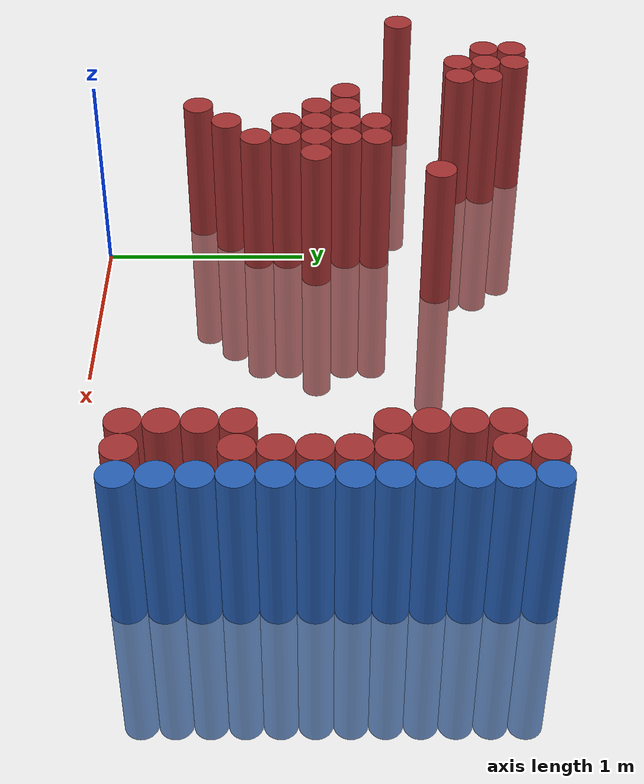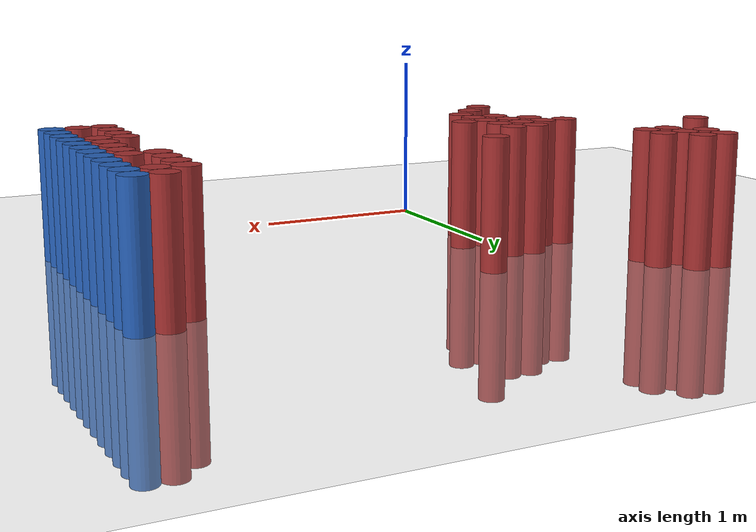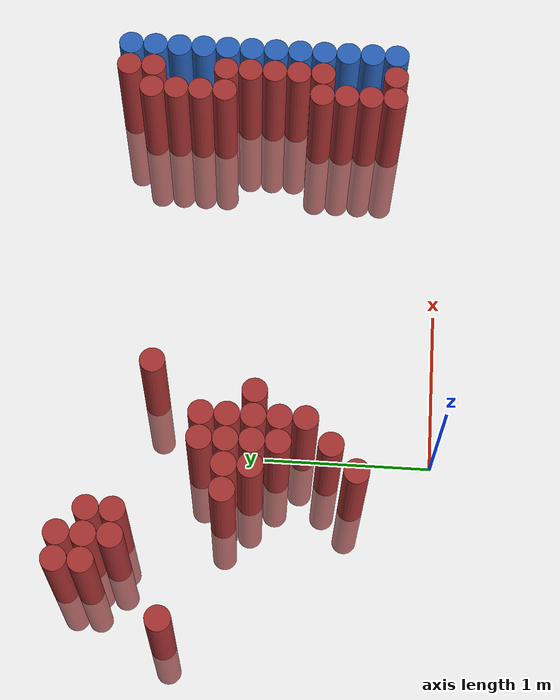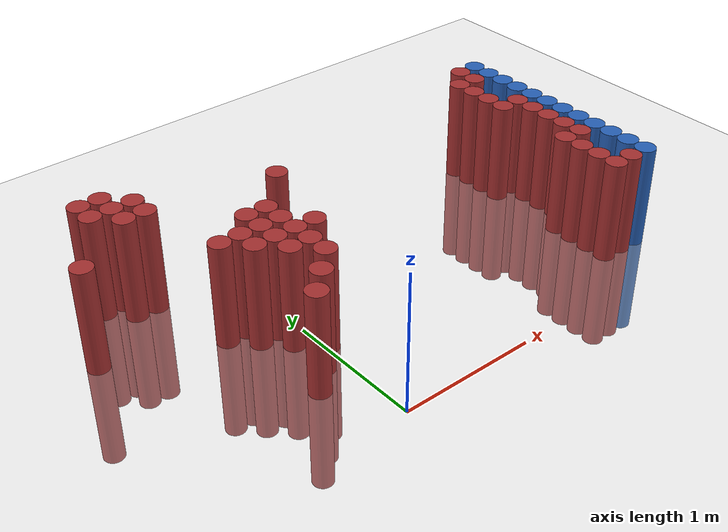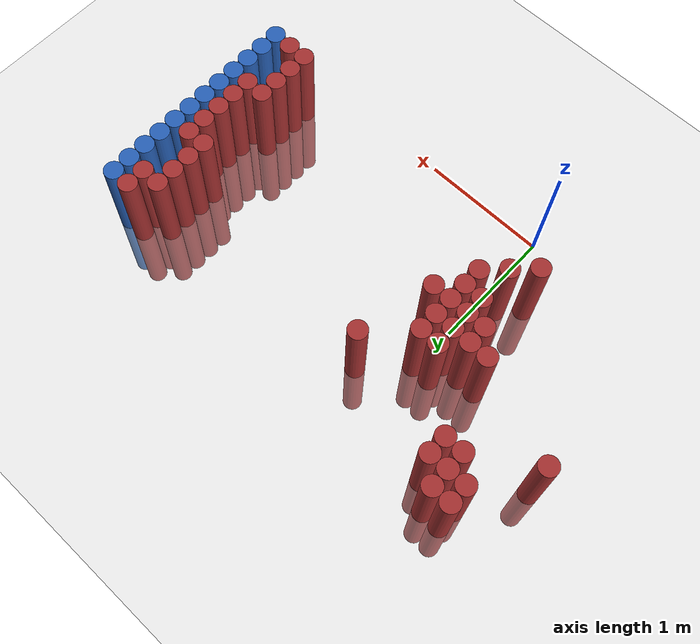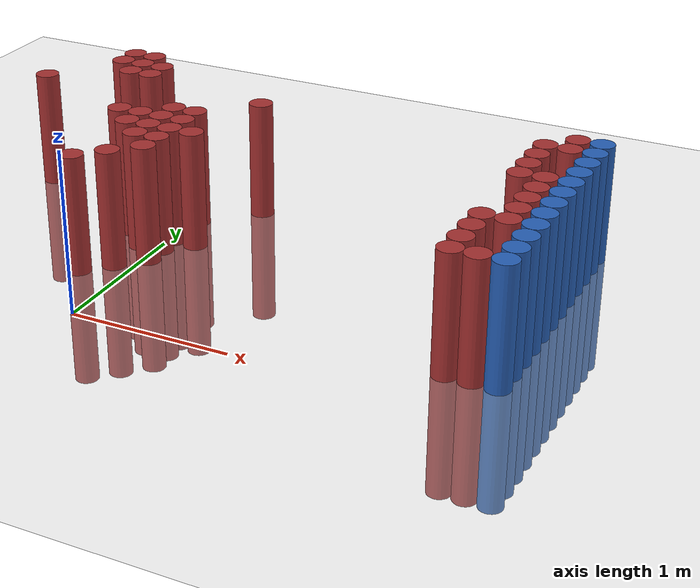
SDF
<sdf version="1.6">
 <world name="default">
  <model name="ground_plane">
   <static>1</static>
   <link name="link">
    <collision name="collision">
     <geometry><plane><normal>0 0 1</normal><size>100 100</size></plane></geometry>
     <surface><friction><ode><mu>100</mu><mu2>50</mu2></ode></friction></surface>
    </collision>
    <visual name="visual">
     <cast_shadows>0</cast_shadows>
     <geometry><plane><normal>0 0 1</normal><size>100 100</size></plane></geometry>
     <material>
      <script><uri>file://media/materials/scripts/gazebo.material</uri><name>Gazebo/Grey</name></script>
     </material>
    </visual>
   </link>
  </model>
  <model name="unit_cylinder_154">
   <static>1</static>
   <pose>-1.175000 1.525000 0.000000 0.000000 0.000000 0.000000</pose>
   <link name="link">
    <inertial>
     <mass>1</mass>
     <inertia><ixx>0.145833</ixx><ixy>0</ixy><ixz>0</ixz><iyy>0.145833</iyy><iyz>0</iyz><izz>0.125</izz></inertia>
    </inertial>
    <collision name="collision">
     <geometry><cylinder><radius>0.075000</radius><length>1.5</length></cylinder></geometry>
    </collision>
    <visual name="visual">
     <geometry><cylinder><radius>0.075000</radius><length>1.5</length></cylinder></geometry>
     <material>
      <ambient>0.648000 0.192000 0.192000 1</ambient>
      <diffuse>0.648000 0.192000 0.192000 1</diffuse>
     </material>
     <material>
      <script><name>Gazebo/Grey</name><uri>file://media/materials/scripts/gazebo.material</uri></script>
     </material>
    </visual>
   </link>
  </model>
  <model name="unit_cylinder_158">
   <static>1</static>
   <pose>-0.875000 1.975000 0.000000 0.000000 0.000000 0.000000</pose>
   <link name="link">
    <inertial>
     <mass>1</mass>
     <inertia><ixx>0.145833</ixx><ixy>0</ixy><ixz>0</ixz><iyy>0.145833</iyy><iyz>0</iyz><izz>0.125</izz></inertia>
    </inertial>
    <collision name="collision">
     <geometry><cylinder><radius>0.075000</radius><length>1.5</length></cylinder></geometry>
    </collision>
    <visual name="visual">
     <geometry><cylinder><radius>0.075000</radius><length>1.5</length></cylinder></geometry>
     <material>
      <ambient>0.648000 0.192000 0.192000 1</ambient>
      <diffuse>0.648000 0.192000 0.192000 1</diffuse>
     </material>
     <material>
      <script><name>Gazebo/Grey</name><uri>file://media/materials/scripts/gazebo.material</uri></script>
     </material>
    </visual>
   </link>
  </model>
  <model name="unit_cylinder_159">
   <static>1</static>
   <pose>-0.875000 2.125000 0.000000 0.000000 0.000000 0.000000</pose>
   <link name="link">
    <inertial>
     <mass>1</mass>
     <inertia><ixx>0.145833</ixx><ixy>0</ixy><ixz>0</ixz><iyy>0.145833</iyy><iyz>0</iyz><izz>0.125</izz></inertia>
    </inertial>
    <collision name="collision">
     <geometry><cylinder><radius>0.075000</radius><length>1.5</length></cylinder></geometry>
    </collision>
    <visual name="visual">
     <geometry><cylinder><radius>0.075000</radius><length>1.5</length></cylinder></geometry>
     <material>
      <ambient>0.648000 0.192000 0.192000 1</ambient>
      <diffuse>0.648000 0.192000 0.192000 1</diffuse>
     </material>
     <material>
      <script><name>Gazebo/Grey</name><uri>file://media/materials/scripts/gazebo.material</uri></script>
     </material>
    </visual>
   </link>
  </model>
  <model name="unit_cylinder_161">
   <static>1</static>
   <pose>-0.725000 1.825000 0.000000 0.000000 0.000000 0.000000</pose>
   <link name="link">
    <inertial>
     <mass>1</mass>
     <inertia><ixx>0.145833</ixx><ixy>0</ixy><ixz>0</ixz><iyy>0.145833</iyy><iyz>0</iyz><izz>0.125</izz></inertia>
    </inertial>
    <collision name="collision">
     <geometry><cylinder><radius>0.075000</radius><length>1.5</length></cylinder></geometry>
    </collision>
    <visual name="visual">
     <geometry><cylinder><radius>0.075000</radius><length>1.5</length></cylinder></geometry>
     <material>
      <ambient>0.648000 0.192000 0.192000 1</ambient>
      <diffuse>0.648000 0.192000 0.192000 1</diffuse>
     </material>
     <material>
      <script><name>Gazebo/Grey</name><uri>file://media/materials/scripts/gazebo.material</uri></script>
     </material>
    </visual>
   </link>
  </model>
  <model name="unit_cylinder_162">
   <static>1</static>
   <pose>-0.725000 1.975000 0.000000 0.000000 0.000000 0.000000</pose>
   <link name="link">
    <inertial>
     <mass>1</mass>
     <inertia><ixx>0.145833</ixx><ixy>0</ixy><ixz>0</ixz><iyy>0.145833</iyy><iyz>0</iyz><izz>0.125</izz></inertia>
    </inertial>
    <collision name="collision">
     <geometry><cylinder><radius>0.075000</radius><length>1.5</length></cylinder></geometry>
    </collision>
    <visual name="visual">
     <geometry><cylinder><radius>0.075000</radius><length>1.5</length></cylinder></geometry>
     <material>
      <ambient>0.648000 0.192000 0.192000 1</ambient>
      <diffuse>0.648000 0.192000 0.192000 1</diffuse>
     </material>
     <material>
      <script><name>Gazebo/Grey</name><uri>file://media/materials/scripts/gazebo.material</uri></script>
     </material>
    </visual>
   </link>
  </model>
  <model name="unit_cylinder_163">
   <static>1</static>
   <pose>-0.725000 2.125000 0.000000 0.000000 0.000000 0.000000</pose>
   <link name="link">
    <inertial>
     <mass>1</mass>
     <inertia><ixx>0.145833</ixx><ixy>0</ixy><ixz>0</ixz><iyy>0.145833</iyy><iyz>0</iyz><izz>0.125</izz></inertia>
    </inertial>
    <collision name="collision">
     <geometry><cylinder><radius>0.075000</radius><length>1.5</length></cylinder></geometry>
    </collision>
    <visual name="visual">
     <geometry><cylinder><radius>0.075000</radius><length>1.5</length></cylinder></geometry>
     <material>
      <ambient>0.648000 0.192000 0.192000 1</ambient>
      <diffuse>0.648000 0.192000 0.192000 1</diffuse>
     </material>
     <material>
      <script><name>Gazebo/Grey</name><uri>file://media/materials/scripts/gazebo.material</uri></script>
     </material>
    </visual>
   </link>
  </model>
  <model name="unit_cylinder_166">
   <static>1</static>
   <pose>-0.575000 1.825000 0.000000 0.000000 0.000000 0.000000</pose>
   <link name="link">
    <inertial>
     <mass>1</mass>
     <inertia><ixx>0.145833</ixx><ixy>0</ixy><ixz>0</ixz><iyy>0.145833</iyy><iyz>0</iyz><izz>0.125</izz></inertia>
    </inertial>
    <collision name="collision">
     <geometry><cylinder><radius>0.075000</radius><length>1.5</length></cylinder></geometry>
    </collision>
    <visual name="visual">
     <geometry><cylinder><radius>0.075000</radius><length>1.5</length></cylinder></geometry>
     <material>
      <ambient>0.648000 0.192000 0.192000 1</ambient>
      <diffuse>0.648000 0.192000 0.192000 1</diffuse>
     </material>
     <material>
      <script><name>Gazebo/Grey</name><uri>file://media/materials/scripts/gazebo.material</uri></script>
     </material>
    </visual>
   </link>
  </model>
  <model name="unit_cylinder_167">
   <static>1</static>
   <pose>-0.575000 1.975000 0.000000 0.000000 0.000000 0.000000</pose>
   <link name="link">
    <inertial>
     <mass>1</mass>
     <inertia><ixx>0.145833</ixx><ixy>0</ixy><ixz>0</ixz><iyy>0.145833</iyy><iyz>0</iyz><izz>0.125</izz></inertia>
    </inertial>
    <collision name="collision">
     <geometry><cylinder><radius>0.075000</radius><length>1.5</length></cylinder></geometry>
    </collision>
    <visual name="visual">
     <geometry><cylinder><radius>0.075000</radius><length>1.5</length></cylinder></geometry>
     <material>
      <ambient>0.648000 0.192000 0.192000 1</ambient>
      <diffuse>0.648000 0.192000 0.192000 1</diffuse>
     </material>
     <material>
      <script><name>Gazebo/Grey</name><uri>file://media/materials/scripts/gazebo.material</uri></script>
     </material>
    </visual>
   </link>
  </model>
  <model name="unit_cylinder_169">
   <static>1</static>
   <pose>-0.425000 1.225000 0.000000 0.000000 0.000000 0.000000</pose>
   <link name="link">
    <inertial>
     <mass>1</mass>
     <inertia><ixx>0.145833</ixx><ixy>0</ixy><ixz>0</ixz><iyy>0.145833</iyy><iyz>0</iyz><izz>0.125</izz></inertia>
    </inertial>
    <collision name="collision">
     <geometry><cylinder><radius>0.075000</radius><length>1.5</length></cylinder></geometry>
    </collision>
    <visual name="visual">
     <geometry><cylinder><radius>0.075000</radius><length>1.5</length></cylinder></geometry>
     <material>
      <ambient>0.648000 0.192000 0.192000 1</ambient>
      <diffuse>0.648000 0.192000 0.192000 1</diffuse>
     </material>
     <material>
      <script><name>Gazebo/Grey</name><uri>file://media/materials/scripts/gazebo.material</uri></script>
     </material>
    </visual>
   </link>
  </model>
  <model name="unit_cylinder_170">
   <static>1</static>
   <pose>-0.275000 0.475000 0.000000 0.000000 0.000000 0.000000</pose>
   <link name="link">
    <inertial>
     <mass>1</mass>
     <inertia><ixx>0.145833</ixx><ixy>0</ixy><ixz>0</ixz><iyy>0.145833</iyy><iyz>0</iyz><izz>0.125</izz></inertia>
    </inertial>
    <collision name="collision">
     <geometry><cylinder><radius>0.075000</radius><length>1.5</length></cylinder></geometry>
    </collision>
    <visual name="visual">
     <geometry><cylinder><radius>0.075000</radius><length>1.5</length></cylinder></geometry>
     <material>
      <ambient>0.648000 0.192000 0.192000 1</ambient>
      <diffuse>0.648000 0.192000 0.192000 1</diffuse>
     </material>
     <material>
      <script><name>Gazebo/Grey</name><uri>file://media/materials/scripts/gazebo.material</uri></script>
     </material>
    </visual>
   </link>
  </model>
  <model name="unit_cylinder_171">
   <static>1</static>
   <pose>-0.275000 1.075000 0.000000 0.000000 0.000000 0.000000</pose>
   <link name="link">
    <inertial>
     <mass>1</mass>
     <inertia><ixx>0.145833</ixx><ixy>0</ixy><ixz>0</ixz><iyy>0.145833</iyy><iyz>0</iyz><izz>0.125</izz></inertia>
    </inertial>
    <collision name="collision">
     <geometry><cylinder><radius>0.075000</radius><length>1.5</length></cylinder></geometry>
    </collision>
    <visual name="visual">
     <geometry><cylinder><radius>0.075000</radius><length>1.5</length></cylinder></geometry>
     <material>
      <ambient>0.648000 0.192000 0.192000 1</ambient>
      <diffuse>0.648000 0.192000 0.192000 1</diffuse>
     </material>
     <material>
      <script><name>Gazebo/Grey</name><uri>file://media/materials/scripts/gazebo.material</uri></script>
     </material>
    </visual>
   </link>
  </model>
  <model name="unit_cylinder_172">
   <static>1</static>
   <pose>-0.275000 1.225000 0.000000 0.000000 0.000000 0.000000</pose>
   <link name="link">
    <inertial>
     <mass>1</mass>
     <inertia><ixx>0.145833</ixx><ixy>0</ixy><ixz>0</ixz><iyy>0.145833</iyy><iyz>0</iyz><izz>0.125</izz></inertia>
    </inertial>
    <collision name="collision">
     <geometry><cylinder><radius>0.075000</radius><length>1.5</length></cylinder></geometry>
    </collision>
    <visual name="visual">
     <geometry><cylinder><radius>0.075000</radius><length>1.5</length></cylinder></geometry>
     <material>
      <ambient>0.648000 0.192000 0.192000 1</ambient>
      <diffuse>0.648000 0.192000 0.192000 1</diffuse>
     </material>
     <material>
      <script><name>Gazebo/Grey</name><uri>file://media/materials/scripts/gazebo.material</uri></script>
     </material>
    </visual>
   </link>
  </model>
  <model name="unit_cylinder_174">
   <static>1</static>
   <pose>-0.125000 0.625000 0.000000 0.000000 0.000000 0.000000</pose>
   <link name="link">
    <inertial>
     <mass>1</mass>
     <inertia><ixx>0.145833</ixx><ixy>0</ixy><ixz>0</ixz><iyy>0.145833</iyy><iyz>0</iyz><izz>0.125</izz></inertia>
    </inertial>
    <collision name="collision">
     <geometry><cylinder><radius>0.075000</radius><length>1.5</length></cylinder></geometry>
    </collision>
    <visual name="visual">
     <geometry><cylinder><radius>0.075000</radius><length>1.5</length></cylinder></geometry>
     <material>
      <ambient>0.648000 0.192000 0.192000 1</ambient>
      <diffuse>0.648000 0.192000 0.192000 1</diffuse>
     </material>
     <material>
      <script><name>Gazebo/Grey</name><uri>file://media/materials/scripts/gazebo.material</uri></script>
     </material>
    </visual>
   </link>
  </model>
  <model name="unit_cylinder_175">
   <static>1</static>
   <pose>-0.125000 0.925000 0.000000 0.000000 0.000000 0.000000</pose>
   <link name="link">
    <inertial>
     <mass>1</mass>
     <inertia><ixx>0.145833</ixx><ixy>0</ixy><ixz>0</ixz><iyy>0.145833</iyy><iyz>0</iyz><izz>0.125</izz></inertia>
    </inertial>
    <collision name="collision">
     <geometry><cylinder><radius>0.075000</radius><length>1.5</length></cylinder></geometry>
    </collision>
    <visual name="visual">
     <geometry><cylinder><radius>0.075000</radius><length>1.5</length></cylinder></geometry>
     <material>
      <ambient>0.648000 0.192000 0.192000 1</ambient>
      <diffuse>0.648000 0.192000 0.192000 1</diffuse>
     </material>
     <material>
      <script><name>Gazebo/Grey</name><uri>file://media/materials/scripts/gazebo.material</uri></script>
     </material>
    </visual>
   </link>
  </model>
  <model name="unit_cylinder_176">
   <static>1</static>
   <pose>-0.125000 1.075000 0.000000 0.000000 0.000000 0.000000</pose>
   <link name="link">
    <inertial>
     <mass>1</mass>
     <inertia><ixx>0.145833</ixx><ixy>0</ixy><ixz>0</ixz><iyy>0.145833</iyy><iyz>0</iyz><izz>0.125</izz></inertia>
    </inertial>
    <collision name="collision">
     <geometry><cylinder><radius>0.075000</radius><length>1.5</length></cylinder></geometry>
    </collision>
    <visual name="visual">
     <geometry><cylinder><radius>0.075000</radius><length>1.5</length></cylinder></geometry>
     <material>
      <ambient>0.648000 0.192000 0.192000 1</ambient>
      <diffuse>0.648000 0.192000 0.192000 1</diffuse>
     </material>
     <material>
      <script><name>Gazebo/Grey</name><uri>file://media/materials/scripts/gazebo.material</uri></script>
     </material>
    </visual>
   </link>
  </model>
  <model name="unit_cylinder_177">
   <static>1</static>
   <pose>-0.125000 1.225000 0.000000 0.000000 0.000000 0.000000</pose>
   <link name="link">
    <inertial>
     <mass>1</mass>
     <inertia><ixx>0.145833</ixx><ixy>0</ixy><ixz>0</ixz><iyy>0.145833</iyy><iyz>0</iyz><izz>0.125</izz></inertia>
    </inertial>
    <collision name="collision">
     <geometry><cylinder><radius>0.075000</radius><length>1.5</length></cylinder></geometry>
    </collision>
    <visual name="visual">
     <geometry><cylinder><radius>0.075000</radius><length>1.5</length></cylinder></geometry>
     <material>
      <ambient>0.648000 0.192000 0.192000 1</ambient>
      <diffuse>0.648000 0.192000 0.192000 1</diffuse>
     </material>
     <material>
      <script><name>Gazebo/Grey</name><uri>file://media/materials/scripts/gazebo.material</uri></script>
     </material>
    </visual>
   </link>
  </model>
  <model name="unit_cylinder_178">
   <static>1</static>
   <pose>-0.125000 1.375000 0.000000 0.000000 0.000000 0.000000</pose>
   <link name="link">
    <inertial>
     <mass>1</mass>
     <inertia><ixx>0.145833</ixx><ixy>0</ixy><ixz>0</ixz><iyy>0.145833</iyy><iyz>0</iyz><izz>0.125</izz></inertia>
    </inertial>
    <collision name="collision">
     <geometry><cylinder><radius>0.075000</radius><length>1.5</length></cylinder></geometry>
    </collision>
    <visual name="visual">
     <geometry><cylinder><radius>0.075000</radius><length>1.5</length></cylinder></geometry>
     <material>
      <ambient>0.648000 0.192000 0.192000 1</ambient>
      <diffuse>0.648000 0.192000 0.192000 1</diffuse>
     </material>
     <material>
      <script><name>Gazebo/Grey</name><uri>file://media/materials/scripts/gazebo.material</uri></script>
     </material>
    </visual>
   </link>
  </model>
  <model name="unit_cylinder_180">
   <static>1</static>
   <pose>0.025000 0.775000 0.000000 0.000000 0.000000 0.000000</pose>
   <link name="link">
    <inertial>
     <mass>1</mass>
     <inertia><ixx>0.145833</ixx><ixy>0</ixy><ixz>0</ixz><iyy>0.145833</iyy><iyz>0</iyz><izz>0.125</izz></inertia>
    </inertial>
    <collision name="collision">
     <geometry><cylinder><radius>0.075000</radius><length>1.5</length></cylinder></geometry>
    </collision>
    <visual name="visual">
     <geometry><cylinder><radius>0.075000</radius><length>1.5</length></cylinder></geometry>
     <material>
      <ambient>0.648000 0.192000 0.192000 1</ambient>
      <diffuse>0.648000 0.192000 0.192000 1</diffuse>
     </material>
     <material>
      <script><name>Gazebo/Grey</name><uri>file://media/materials/scripts/gazebo.material</uri></script>
     </material>
    </visual>
   </link>
  </model>
  <model name="unit_cylinder_181">
   <static>1</static>
   <pose>0.025000 0.925000 0.000000 0.000000 0.000000 0.000000</pose>
   <link name="link">
    <inertial>
     <mass>1</mass>
     <inertia><ixx>0.145833</ixx><ixy>0</ixy><ixz>0</ixz><iyy>0.145833</iyy><iyz>0</iyz><izz>0.125</izz></inertia>
    </inertial>
    <collision name="collision">
     <geometry><cylinder><radius>0.075000</radius><length>1.5</length></cylinder></geometry>
    </collision>
    <visual name="visual">
     <geometry><cylinder><radius>0.075000</radius><length>1.5</length></cylinder></geometry>
     <material>
      <ambient>0.648000 0.192000 0.192000 1</ambient>
      <diffuse>0.648000 0.192000 0.192000 1</diffuse>
     </material>
     <material>
      <script><name>Gazebo/Grey</name><uri>file://media/materials/scripts/gazebo.material</uri></script>
     </material>
    </visual>
   </link>
  </model>
  <model name="unit_cylinder_182">
   <static>1</static>
   <pose>0.025000 1.075000 0.000000 0.000000 0.000000 0.000000</pose>
   <link name="link">
    <inertial>
     <mass>1</mass>
     <inertia><ixx>0.145833</ixx><ixy>0</ixy><ixz>0</ixz><iyy>0.145833</iyy><iyz>0</iyz><izz>0.125</izz></inertia>
    </inertial>
    <collision name="collision">
     <geometry><cylinder><radius>0.075000</radius><length>1.5</length></cylinder></geometry>
    </collision>
    <visual name="visual">
     <geometry><cylinder><radius>0.075000</radius><length>1.5</length></cylinder></geometry>
     <material>
      <ambient>0.648000 0.192000 0.192000 1</ambient>
      <diffuse>0.648000 0.192000 0.192000 1</diffuse>
     </material>
     <material>
      <script><name>Gazebo/Grey</name><uri>file://media/materials/scripts/gazebo.material</uri></script>
     </material>
    </visual>
   </link>
  </model>
  <model name="unit_cylinder_183">
   <static>1</static>
   <pose>0.025000 1.225000 0.000000 0.000000 0.000000 0.000000</pose>
   <link name="link">
    <inertial>
     <mass>1</mass>
     <inertia><ixx>0.145833</ixx><ixy>0</ixy><ixz>0</ixz><iyy>0.145833</iyy><iyz>0</iyz><izz>0.125</izz></inertia>
    </inertial>
    <collision name="collision">
     <geometry><cylinder><radius>0.075000</radius><length>1.5</length></cylinder></geometry>
    </collision>
    <visual name="visual">
     <geometry><cylinder><radius>0.075000</radius><length>1.5</length></cylinder></geometry>
     <material>
      <ambient>0.648000 0.192000 0.192000 1</ambient>
      <diffuse>0.648000 0.192000 0.192000 1</diffuse>
     </material>
     <material>
      <script><name>Gazebo/Grey</name><uri>file://media/materials/scripts/gazebo.material</uri></script>
     </material>
    </visual>
   </link>
  </model>
  <model name="unit_cylinder_184">
   <static>1</static>
   <pose>0.025000 1.375000 0.000000 0.000000 0.000000 0.000000</pose>
   <link name="link">
    <inertial>
     <mass>1</mass>
     <inertia><ixx>0.145833</ixx><ixy>0</ixy><ixz>0</ixz><iyy>0.145833</iyy><iyz>0</iyz><izz>0.125</izz></inertia>
    </inertial>
    <collision name="collision">
     <geometry><cylinder><radius>0.075000</radius><length>1.5</length></cylinder></geometry>
    </collision>
    <visual name="visual">
     <geometry><cylinder><radius>0.075000</radius><length>1.5</length></cylinder></geometry>
     <material>
      <ambient>0.648000 0.192000 0.192000 1</ambient>
      <diffuse>0.648000 0.192000 0.192000 1</diffuse>
     </material>
     <material>
      <script><name>Gazebo/Grey</name><uri>file://media/materials/scripts/gazebo.material</uri></script>
     </material>
    </visual>
   </link>
  </model>
  <model name="unit_cylinder_187">
   <static>1</static>
   <pose>0.175000 1.075000 0.000000 0.000000 0.000000 0.000000</pose>
   <link name="link">
    <inertial>
     <mass>1</mass>
     <inertia><ixx>0.145833</ixx><ixy>0</ixy><ixz>0</ixz><iyy>0.145833</iyy><iyz>0</iyz><izz>0.125</izz></inertia>
    </inertial>
    <collision name="collision">
     <geometry><cylinder><radius>0.075000</radius><length>1.5</length></cylinder></geometry>
    </collision>
    <visual name="visual">
     <geometry><cylinder><radius>0.075000</radius><length>1.5</length></cylinder></geometry>
     <material>
      <ambient>0.648000 0.192000 0.192000 1</ambient>
      <diffuse>0.648000 0.192000 0.192000 1</diffuse>
     </material>
     <material>
      <script><name>Gazebo/Grey</name><uri>file://media/materials/scripts/gazebo.material</uri></script>
     </material>
    </visual>
   </link>
  </model>
  <model name="unit_cylinder_189">
   <static>1</static>
   <pose>0.325000 1.675000 0.000000 0.000000 0.000000 0.000000</pose>
   <link name="link">
    <inertial>
     <mass>1</mass>
     <inertia><ixx>0.145833</ixx><ixy>0</ixy><ixz>0</ixz><iyy>0.145833</iyy><iyz>0</iyz><izz>0.125</izz></inertia>
    </inertial>
    <collision name="collision">
     <geometry><cylinder><radius>0.075000</radius><length>1.5</length></cylinder></geometry>
    </collision>
    <visual name="visual">
     <geometry><cylinder><radius>0.075000</radius><length>1.5</length></cylinder></geometry>
     <material>
      <ambient>0.648000 0.192000 0.192000 1</ambient>
      <diffuse>0.648000 0.192000 0.192000 1</diffuse>
     </material>
     <material>
      <script><name>Gazebo/Grey</name><uri>file://media/materials/scripts/gazebo.material</uri></script>
     </material>
    </visual>
   </link>
  </model>
  <model name="unit_cylinder_202">
   <static>1</static>
   <pose>2.125000 0.325000 0.000000 0.000000 0.000000 0.000000</pose>
   <link name="link">
    <inertial>
     <mass>1</mass>
     <inertia><ixx>0.145833</ixx><ixy>0</ixy><ixz>0</ixz><iyy>0.145833</iyy><iyz>0</iyz><izz>0.125</izz></inertia>
    </inertial>
    <collision name="collision">
     <geometry><cylinder><radius>0.075000</radius><length>1.5</length></cylinder></geometry>
    </collision>
    <visual name="visual">
     <geometry><cylinder><radius>0.075000</radius><length>1.5</length></cylinder></geometry>
     <material>
      <ambient>0.648000 0.192000 0.192000 1</ambient>
      <diffuse>0.648000 0.192000 0.192000 1</diffuse>
     </material>
     <material>
      <script><name>Gazebo/Grey</name><uri>file://media/materials/scripts/gazebo.material</uri></script>
     </material>
    </visual>
   </link>
  </model>
  <model name="unit_cylinder_203">
   <static>1</static>
   <pose>2.125000 0.475000 0.000000 0.000000 0.000000 0.000000</pose>
   <link name="link">
    <inertial>
     <mass>1</mass>
     <inertia><ixx>0.145833</ixx><ixy>0</ixy><ixz>0</ixz><iyy>0.145833</iyy><iyz>0</iyz><izz>0.125</izz></inertia>
    </inertial>
    <collision name="collision">
     <geometry><cylinder><radius>0.075000</radius><length>1.5</length></cylinder></geometry>
    </collision>
    <visual name="visual">
     <geometry><cylinder><radius>0.075000</radius><length>1.5</length></cylinder></geometry>
     <material>
      <ambient>0.648000 0.192000 0.192000 1</ambient>
      <diffuse>0.648000 0.192000 0.192000 1</diffuse>
     </material>
     <material>
      <script><name>Gazebo/Grey</name><uri>file://media/materials/scripts/gazebo.material</uri></script>
     </material>
    </visual>
   </link>
  </model>
  <model name="unit_cylinder_204">
   <static>1</static>
   <pose>2.125000 0.625000 0.000000 0.000000 0.000000 0.000000</pose>
   <link name="link">
    <inertial>
     <mass>1</mass>
     <inertia><ixx>0.145833</ixx><ixy>0</ixy><ixz>0</ixz><iyy>0.145833</iyy><iyz>0</iyz><izz>0.125</izz></inertia>
    </inertial>
    <collision name="collision">
     <geometry><cylinder><radius>0.075000</radius><length>1.5</length></cylinder></geometry>
    </collision>
    <visual name="visual">
     <geometry><cylinder><radius>0.075000</radius><length>1.5</length></cylinder></geometry>
     <material>
      <ambient>0.648000 0.192000 0.192000 1</ambient>
      <diffuse>0.648000 0.192000 0.192000 1</diffuse>
     </material>
     <material>
      <script><name>Gazebo/Grey</name><uri>file://media/materials/scripts/gazebo.material</uri></script>
     </material>
    </visual>
   </link>
  </model>
  <model name="unit_cylinder_205">
   <static>1</static>
   <pose>2.125000 0.775000 0.000000 0.000000 0.000000 0.000000</pose>
   <link name="link">
    <inertial>
     <mass>1</mass>
     <inertia><ixx>0.145833</ixx><ixy>0</ixy><ixz>0</ixz><iyy>0.145833</iyy><iyz>0</iyz><izz>0.125</izz></inertia>
    </inertial>
    <collision name="collision">
     <geometry><cylinder><radius>0.075000</radius><length>1.5</length></cylinder></geometry>
    </collision>
    <visual name="visual">
     <geometry><cylinder><radius>0.075000</radius><length>1.5</length></cylinder></geometry>
     <material>
      <ambient>0.648000 0.192000 0.192000 1</ambient>
      <diffuse>0.648000 0.192000 0.192000 1</diffuse>
     </material>
     <material>
      <script><name>Gazebo/Grey</name><uri>file://media/materials/scripts/gazebo.material</uri></script>
     </material>
    </visual>
   </link>
  </model>
  <model name="unit_cylinder_206">
   <static>1</static>
   <pose>2.125000 1.375000 0.000000 0.000000 0.000000 0.000000</pose>
   <link name="link">
    <inertial>
     <mass>1</mass>
     <inertia><ixx>0.145833</ixx><ixy>0</ixy><ixz>0</ixz><iyy>0.145833</iyy><iyz>0</iyz><izz>0.125</izz></inertia>
    </inertial>
    <collision name="collision">
     <geometry><cylinder><radius>0.075000</radius><length>1.5</length></cylinder></geometry>
    </collision>
    <visual name="visual">
     <geometry><cylinder><radius>0.075000</radius><length>1.5</length></cylinder></geometry>
     <material>
      <ambient>0.648000 0.192000 0.192000 1</ambient>
      <diffuse>0.648000 0.192000 0.192000 1</diffuse>
     </material>
     <material>
      <script><name>Gazebo/Grey</name><uri>file://media/materials/scripts/gazebo.material</uri></script>
     </material>
    </visual>
   </link>
  </model>
  <model name="unit_cylinder_207">
   <static>1</static>
   <pose>2.125000 1.525000 0.000000 0.000000 0.000000 0.000000</pose>
   <link name="link">
    <inertial>
     <mass>1</mass>
     <inertia><ixx>0.145833</ixx><ixy>0</ixy><ixz>0</ixz><iyy>0.145833</iyy><iyz>0</iyz><izz>0.125</izz></inertia>
    </inertial>
    <collision name="collision">
     <geometry><cylinder><radius>0.075000</radius><length>1.5</length></cylinder></geometry>
    </collision>
    <visual name="visual">
     <geometry><cylinder><radius>0.075000</radius><length>1.5</length></cylinder></geometry>
     <material>
      <ambient>0.648000 0.192000 0.192000 1</ambient>
      <diffuse>0.648000 0.192000 0.192000 1</diffuse>
     </material>
     <material>
      <script><name>Gazebo/Grey</name><uri>file://media/materials/scripts/gazebo.material</uri></script>
     </material>
    </visual>
   </link>
  </model>
  <model name="unit_cylinder_208">
   <static>1</static>
   <pose>2.125000 1.675000 0.000000 0.000000 0.000000 0.000000</pose>
   <link name="link">
    <inertial>
     <mass>1</mass>
     <inertia><ixx>0.145833</ixx><ixy>0</ixy><ixz>0</ixz><iyy>0.145833</iyy><iyz>0</iyz><izz>0.125</izz></inertia>
    </inertial>
    <collision name="collision">
     <geometry><cylinder><radius>0.075000</radius><length>1.5</length></cylinder></geometry>
    </collision>
    <visual name="visual">
     <geometry><cylinder><radius>0.075000</radius><length>1.5</length></cylinder></geometry>
     <material>
      <ambient>0.648000 0.192000 0.192000 1</ambient>
      <diffuse>0.648000 0.192000 0.192000 1</diffuse>
     </material>
     <material>
      <script><name>Gazebo/Grey</name><uri>file://media/materials/scripts/gazebo.material</uri></script>
     </material>
    </visual>
   </link>
  </model>
  <model name="unit_cylinder_209">
   <static>1</static>
   <pose>2.125000 1.825000 0.000000 0.000000 0.000000 0.000000</pose>
   <link name="link">
    <inertial>
     <mass>1</mass>
     <inertia><ixx>0.145833</ixx><ixy>0</ixy><ixz>0</ixz><iyy>0.145833</iyy><iyz>0</iyz><izz>0.125</izz></inertia>
    </inertial>
    <collision name="collision">
     <geometry><cylinder><radius>0.075000</radius><length>1.5</length></cylinder></geometry>
    </collision>
    <visual name="visual">
     <geometry><cylinder><radius>0.075000</radius><length>1.5</length></cylinder></geometry>
     <material>
      <ambient>0.648000 0.192000 0.192000 1</ambient>
      <diffuse>0.648000 0.192000 0.192000 1</diffuse>
     </material>
     <material>
      <script><name>Gazebo/Grey</name><uri>file://media/materials/scripts/gazebo.material</uri></script>
     </material>
    </visual>
   </link>
  </model>
  <model name="unit_cylinder_211">
   <static>1</static>
   <pose>2.275000 0.325000 0.000000 0.000000 0.000000 0.000000</pose>
   <link name="link">
    <inertial>
     <mass>1</mass>
     <inertia><ixx>0.145833</ixx><ixy>0</ixy><ixz>0</ixz><iyy>0.145833</iyy><iyz>0</iyz><izz>0.125</izz></inertia>
    </inertial>
    <collision name="collision">
     <geometry><cylinder><radius>0.075000</radius><length>1.5</length></cylinder></geometry>
    </collision>
    <visual name="visual">
     <geometry><cylinder><radius>0.075000</radius><length>1.5</length></cylinder></geometry>
     <material>
      <ambient>0.648000 0.192000 0.192000 1</ambient>
      <diffuse>0.648000 0.192000 0.192000 1</diffuse>
     </material>
     <material>
      <script><name>Gazebo/Grey</name><uri>file://media/materials/scripts/gazebo.material</uri></script>
     </material>
    </visual>
   </link>
  </model>
  <model name="unit_cylinder_212">
   <static>1</static>
   <pose>2.275000 0.775000 0.000000 0.000000 0.000000 0.000000</pose>
   <link name="link">
    <inertial>
     <mass>1</mass>
     <inertia><ixx>0.145833</ixx><ixy>0</ixy><ixz>0</ixz><iyy>0.145833</iyy><iyz>0</iyz><izz>0.125</izz></inertia>
    </inertial>
    <collision name="collision">
     <geometry><cylinder><radius>0.075000</radius><length>1.5</length></cylinder></geometry>
    </collision>
    <visual name="visual">
     <geometry><cylinder><radius>0.075000</radius><length>1.5</length></cylinder></geometry>
     <material>
      <ambient>0.648000 0.192000 0.192000 1</ambient>
      <diffuse>0.648000 0.192000 0.192000 1</diffuse>
     </material>
     <material>
      <script><name>Gazebo/Grey</name><uri>file://media/materials/scripts/gazebo.material</uri></script>
     </material>
    </visual>
   </link>
  </model>
  <model name="unit_cylinder_213">
   <static>1</static>
   <pose>2.275000 0.925000 0.000000 0.000000 0.000000 0.000000</pose>
   <link name="link">
    <inertial>
     <mass>1</mass>
     <inertia><ixx>0.145833</ixx><ixy>0</ixy><ixz>0</ixz><iyy>0.145833</iyy><iyz>0</iyz><izz>0.125</izz></inertia>
    </inertial>
    <collision name="collision">
     <geometry><cylinder><radius>0.075000</radius><length>1.5</length></cylinder></geometry>
    </collision>
    <visual name="visual">
     <geometry><cylinder><radius>0.075000</radius><length>1.5</length></cylinder></geometry>
     <material>
      <ambient>0.648000 0.192000 0.192000 1</ambient>
      <diffuse>0.648000 0.192000 0.192000 1</diffuse>
     </material>
     <material>
      <script><name>Gazebo/Grey</name><uri>file://media/materials/scripts/gazebo.material</uri></script>
     </material>
    </visual>
   </link>
  </model>
  <model name="unit_cylinder_214">
   <static>1</static>
   <pose>2.275000 1.075000 0.000000 0.000000 0.000000 0.000000</pose>
   <link name="link">
    <inertial>
     <mass>1</mass>
     <inertia><ixx>0.145833</ixx><ixy>0</ixy><ixz>0</ixz><iyy>0.145833</iyy><iyz>0</iyz><izz>0.125</izz></inertia>
    </inertial>
    <collision name="collision">
     <geometry><cylinder><radius>0.075000</radius><length>1.5</length></cylinder></geometry>
    </collision>
    <visual name="visual">
     <geometry><cylinder><radius>0.075000</radius><length>1.5</length></cylinder></geometry>
     <material>
      <ambient>0.648000 0.192000 0.192000 1</ambient>
      <diffuse>0.648000 0.192000 0.192000 1</diffuse>
     </material>
     <material>
      <script><name>Gazebo/Grey</name><uri>file://media/materials/scripts/gazebo.material</uri></script>
     </material>
    </visual>
   </link>
  </model>
  <model name="unit_cylinder_215">
   <static>1</static>
   <pose>2.275000 1.225000 0.000000 0.000000 0.000000 0.000000</pose>
   <link name="link">
    <inertial>
     <mass>1</mass>
     <inertia><ixx>0.145833</ixx><ixy>0</ixy><ixz>0</ixz><iyy>0.145833</iyy><iyz>0</iyz><izz>0.125</izz></inertia>
    </inertial>
    <collision name="collision">
     <geometry><cylinder><radius>0.075000</radius><length>1.5</length></cylinder></geometry>
    </collision>
    <visual name="visual">
     <geometry><cylinder><radius>0.075000</radius><length>1.5</length></cylinder></geometry>
     <material>
      <ambient>0.648000 0.192000 0.192000 1</ambient>
      <diffuse>0.648000 0.192000 0.192000 1</diffuse>
     </material>
     <material>
      <script><name>Gazebo/Grey</name><uri>file://media/materials/scripts/gazebo.material</uri></script>
     </material>
    </visual>
   </link>
  </model>
  <model name="unit_cylinder_216">
   <static>1</static>
   <pose>2.275000 1.375000 0.000000 0.000000 0.000000 0.000000</pose>
   <link name="link">
    <inertial>
     <mass>1</mass>
     <inertia><ixx>0.145833</ixx><ixy>0</ixy><ixz>0</ixz><iyy>0.145833</iyy><iyz>0</iyz><izz>0.125</izz></inertia>
    </inertial>
    <collision name="collision">
     <geometry><cylinder><radius>0.075000</radius><length>1.5</length></cylinder></geometry>
    </collision>
    <visual name="visual">
     <geometry><cylinder><radius>0.075000</radius><length>1.5</length></cylinder></geometry>
     <material>
      <ambient>0.648000 0.192000 0.192000 1</ambient>
      <diffuse>0.648000 0.192000 0.192000 1</diffuse>
     </material>
     <material>
      <script><name>Gazebo/Grey</name><uri>file://media/materials/scripts/gazebo.material</uri></script>
     </material>
    </visual>
   </link>
  </model>
  <model name="unit_cylinder_217">
   <static>1</static>
   <pose>2.275000 1.825000 0.000000 0.000000 0.000000 0.000000</pose>
   <link name="link">
    <inertial>
     <mass>1</mass>
     <inertia><ixx>0.145833</ixx><ixy>0</ixy><ixz>0</ixz><iyy>0.145833</iyy><iyz>0</iyz><izz>0.125</izz></inertia>
    </inertial>
    <collision name="collision">
     <geometry><cylinder><radius>0.075000</radius><length>1.5</length></cylinder></geometry>
    </collision>
    <visual name="visual">
     <geometry><cylinder><radius>0.075000</radius><length>1.5</length></cylinder></geometry>
     <material>
      <ambient>0.648000 0.192000 0.192000 1</ambient>
      <diffuse>0.648000 0.192000 0.192000 1</diffuse>
     </material>
     <material>
      <script><name>Gazebo/Grey</name><uri>file://media/materials/scripts/gazebo.material</uri></script>
     </material>
    </visual>
   </link>
  </model>
  <model name="unit_cylinder_218">
   <static>1</static>
   <pose>2.275000 1.975000 0.000000 0.000000 0.000000 0.000000</pose>
   <link name="link">
    <inertial>
     <mass>1</mass>
     <inertia><ixx>0.145833</ixx><ixy>0</ixy><ixz>0</ixz><iyy>0.145833</iyy><iyz>0</iyz><izz>0.125</izz></inertia>
    </inertial>
    <collision name="collision">
     <geometry><cylinder><radius>0.075000</radius><length>1.5</length></cylinder></geometry>
    </collision>
    <visual name="visual">
     <geometry><cylinder><radius>0.075000</radius><length>1.5</length></cylinder></geometry>
     <material>
      <ambient>0.648000 0.192000 0.192000 1</ambient>
      <diffuse>0.648000 0.192000 0.192000 1</diffuse>
     </material>
     <material>
      <script><name>Gazebo/Grey</name><uri>file://media/materials/scripts/gazebo.material</uri></script>
     </material>
    </visual>
   </link>
  </model>
  <model name="unit_cylinder_232">
   <static>1</static>
   <pose>2.425000 0.325000 0.000000 0.000000 0.000000 0.000000</pose>
   <link name="link">
    <inertial>
     <mass>1</mass>
     <inertia><ixx>0.145833</ixx><ixy>0</ixy><ixz>0</ixz><iyy>0.145833</iyy><iyz>0</iyz><izz>0.125</izz></inertia>
    </inertial>
    <collision name="collision">
     <geometry><cylinder><radius>0.075000</radius><length>1.5</length></cylinder></geometry>
    </collision>
    <visual name="visual">
     <geometry><cylinder><radius>0.075000</radius><length>1.5</length></cylinder></geometry>
     <material>
      <ambient>0.152000 0.379000 0.720000 1</ambient>
      <diffuse>0.152000 0.379000 0.720000 1</diffuse>
     </material>
     <material>
      <script><name>Gazebo/Grey</name><uri>file://media/materials/scripts/gazebo.material</uri></script>
     </material>
    </visual>
   </link>
  </model>
  <model name="unit_cylinder_233">
   <static>1</static>
   <pose>2.425000 0.475000 0.000000 0.000000 0.000000 0.000000</pose>
   <link name="link">
    <inertial>
     <mass>1</mass>
     <inertia><ixx>0.145833</ixx><ixy>0</ixy><ixz>0</ixz><iyy>0.145833</iyy><iyz>0</iyz><izz>0.125</izz></inertia>
    </inertial>
    <collision name="collision">
     <geometry><cylinder><radius>0.075000</radius><length>1.5</length></cylinder></geometry>
    </collision>
    <visual name="visual">
     <geometry><cylinder><radius>0.075000</radius><length>1.5</length></cylinder></geometry>
     <material>
      <ambient>0.152000 0.379000 0.720000 1</ambient>
      <diffuse>0.152000 0.379000 0.720000 1</diffuse>
     </material>
     <material>
      <script><name>Gazebo/Grey</name><uri>file://media/materials/scripts/gazebo.material</uri></script>
     </material>
    </visual>
   </link>
  </model>
  <model name="unit_cylinder_234">
   <static>1</static>
   <pose>2.425000 0.625000 0.000000 0.000000 0.000000 0.000000</pose>
   <link name="link">
    <inertial>
     <mass>1</mass>
     <inertia><ixx>0.145833</ixx><ixy>0</ixy><ixz>0</ixz><iyy>0.145833</iyy><iyz>0</iyz><izz>0.125</izz></inertia>
    </inertial>
    <collision name="collision">
     <geometry><cylinder><radius>0.075000</radius><length>1.5</length></cylinder></geometry>
    </collision>
    <visual name="visual">
     <geometry><cylinder><radius>0.075000</radius><length>1.5</length></cylinder></geometry>
     <material>
      <ambient>0.152000 0.379000 0.720000 1</ambient>
      <diffuse>0.152000 0.379000 0.720000 1</diffuse>
     </material>
     <material>
      <script><name>Gazebo/Grey</name><uri>file://media/materials/scripts/gazebo.material</uri></script>
     </material>
    </visual>
   </link>
  </model>
  <model name="unit_cylinder_235">
   <static>1</static>
   <pose>2.425000 0.775000 0.000000 0.000000 0.000000 0.000000</pose>
   <link name="link">
    <inertial>
     <mass>1</mass>
     <inertia><ixx>0.145833</ixx><ixy>0</ixy><ixz>0</ixz><iyy>0.145833</iyy><iyz>0</iyz><izz>0.125</izz></inertia>
    </inertial>
    <collision name="collision">
     <geometry><cylinder><radius>0.075000</radius><length>1.5</length></cylinder></geometry>
    </collision>
    <visual name="visual">
     <geometry><cylinder><radius>0.075000</radius><length>1.5</length></cylinder></geometry>
     <material>
      <ambient>0.152000 0.379000 0.720000 1</ambient>
      <diffuse>0.152000 0.379000 0.720000 1</diffuse>
     </material>
     <material>
      <script><name>Gazebo/Grey</name><uri>file://media/materials/scripts/gazebo.material</uri></script>
     </material>
    </visual>
   </link>
  </model>
  <model name="unit_cylinder_236">
   <static>1</static>
   <pose>2.425000 0.925000 0.000000 0.000000 0.000000 0.000000</pose>
   <link name="link">
    <inertial>
     <mass>1</mass>
     <inertia><ixx>0.145833</ixx><ixy>0</ixy><ixz>0</ixz><iyy>0.145833</iyy><iyz>0</iyz><izz>0.125</izz></inertia>
    </inertial>
    <collision name="collision">
     <geometry><cylinder><radius>0.075000</radius><length>1.5</length></cylinder></geometry>
    </collision>
    <visual name="visual">
     <geometry><cylinder><radius>0.075000</radius><length>1.5</length></cylinder></geometry>
     <material>
      <ambient>0.152000 0.379000 0.720000 1</ambient>
      <diffuse>0.152000 0.379000 0.720000 1</diffuse>
     </material>
     <material>
      <script><name>Gazebo/Grey</name><uri>file://media/materials/scripts/gazebo.material</uri></script>
     </material>
    </visual>
   </link>
  </model>
  <model name="unit_cylinder_237">
   <static>1</static>
   <pose>2.425000 1.075000 0.000000 0.000000 0.000000 0.000000</pose>
   <link name="link">
    <inertial>
     <mass>1</mass>
     <inertia><ixx>0.145833</ixx><ixy>0</ixy><ixz>0</ixz><iyy>0.145833</iyy><iyz>0</iyz><izz>0.125</izz></inertia>
    </inertial>
    <collision name="collision">
     <geometry><cylinder><radius>0.075000</radius><length>1.5</length></cylinder></geometry>
    </collision>
    <visual name="visual">
     <geometry><cylinder><radius>0.075000</radius><length>1.5</length></cylinder></geometry>
     <material>
      <ambient>0.152000 0.379000 0.720000 1</ambient>
      <diffuse>0.152000 0.379000 0.720000 1</diffuse>
     </material>
     <material>
      <script><name>Gazebo/Grey</name><uri>file://media/materials/scripts/gazebo.material</uri></script>
     </material>
    </visual>
   </link>
  </model>
  <model name="unit_cylinder_238">
   <static>1</static>
   <pose>2.425000 1.225000 0.000000 0.000000 0.000000 0.000000</pose>
   <link name="link">
    <inertial>
     <mass>1</mass>
     <inertia><ixx>0.145833</ixx><ixy>0</ixy><ixz>0</ixz><iyy>0.145833</iyy><iyz>0</iyz><izz>0.125</izz></inertia>
    </inertial>
    <collision name="collision">
     <geometry><cylinder><radius>0.075000</radius><length>1.5</length></cylinder></geometry>
    </collision>
    <visual name="visual">
     <geometry><cylinder><radius>0.075000</radius><length>1.5</length></cylinder></geometry>
     <material>
      <ambient>0.152000 0.379000 0.720000 1</ambient>
      <diffuse>0.152000 0.379000 0.720000 1</diffuse>
     </material>
     <material>
      <script><name>Gazebo/Grey</name><uri>file://media/materials/scripts/gazebo.material</uri></script>
     </material>
    </visual>
   </link>
  </model>
  <model name="unit_cylinder_239">
   <static>1</static>
   <pose>2.425000 1.375000 0.000000 0.000000 0.000000 0.000000</pose>
   <link name="link">
    <inertial>
     <mass>1</mass>
     <inertia><ixx>0.145833</ixx><ixy>0</ixy><ixz>0</ixz><iyy>0.145833</iyy><iyz>0</iyz><izz>0.125</izz></inertia>
    </inertial>
    <collision name="collision">
     <geometry><cylinder><radius>0.075000</radius><length>1.5</length></cylinder></geometry>
    </collision>
    <visual name="visual">
     <geometry><cylinder><radius>0.075000</radius><length>1.5</length></cylinder></geometry>
     <material>
      <ambient>0.152000 0.379000 0.720000 1</ambient>
      <diffuse>0.152000 0.379000 0.720000 1</diffuse>
     </material>
     <material>
      <script><name>Gazebo/Grey</name><uri>file://media/materials/scripts/gazebo.material</uri></script>
     </material>
    </visual>
   </link>
  </model>
  <model name="unit_cylinder_240">
   <static>1</static>
   <pose>2.425000 1.525000 0.000000 0.000000 0.000000 0.000000</pose>
   <link name="link">
    <inertial>
     <mass>1</mass>
     <inertia><ixx>0.145833</ixx><ixy>0</ixy><ixz>0</ixz><iyy>0.145833</iyy><iyz>0</iyz><izz>0.125</izz></inertia>
    </inertial>
    <collision name="collision">
     <geometry><cylinder><radius>0.075000</radius><length>1.5</length></cylinder></geometry>
    </collision>
    <visual name="visual">
     <geometry><cylinder><radius>0.075000</radius><length>1.5</length></cylinder></geometry>
     <material>
      <ambient>0.152000 0.379000 0.720000 1</ambient>
      <diffuse>0.152000 0.379000 0.720000 1</diffuse>
     </material>
     <material>
      <script><name>Gazebo/Grey</name><uri>file://media/materials/scripts/gazebo.material</uri></script>
     </material>
    </visual>
   </link>
  </model>
  <model name="unit_cylinder_241">
   <static>1</static>
   <pose>2.425000 1.675000 0.000000 0.000000 0.000000 0.000000</pose>
   <link name="link">
    <inertial>
     <mass>1</mass>
     <inertia><ixx>0.145833</ixx><ixy>0</ixy><ixz>0</ixz><iyy>0.145833</iyy><iyz>0</iyz><izz>0.125</izz></inertia>
    </inertial>
    <collision name="collision">
     <geometry><cylinder><radius>0.075000</radius><length>1.5</length></cylinder></geometry>
    </collision>
    <visual name="visual">
     <geometry><cylinder><radius>0.075000</radius><length>1.5</length></cylinder></geometry>
     <material>
      <ambient>0.152000 0.379000 0.720000 1</ambient>
      <diffuse>0.152000 0.379000 0.720000 1</diffuse>
     </material>
     <material>
      <script><name>Gazebo/Grey</name><uri>file://media/materials/scripts/gazebo.material</uri></script>
     </material>
    </visual>
   </link>
  </model>
  <model name="unit_cylinder_242">
   <static>1</static>
   <pose>2.425000 1.825000 0.000000 0.000000 0.000000 0.000000</pose>
   <link name="link">
    <inertial>
     <mass>1</mass>
     <inertia><ixx>0.145833</ixx><ixy>0</ixy><ixz>0</ixz><iyy>0.145833</iyy><iyz>0</iyz><izz>0.125</izz></inertia>
    </inertial>
    <collision name="collision">
     <geometry><cylinder><radius>0.075000</radius><length>1.5</length></cylinder></geometry>
    </collision>
    <visual name="visual">
     <geometry><cylinder><radius>0.075000</radius><length>1.5</length></cylinder></geometry>
     <material>
      <ambient>0.152000 0.379000 0.720000 1</ambient>
      <diffuse>0.152000 0.379000 0.720000 1</diffuse>
     </material>
     <material>
      <script><name>Gazebo/Grey</name><uri>file://media/materials/scripts/gazebo.material</uri></script>
     </material>
    </visual>
   </link>
  </model>
  <model name="unit_cylinder_243">
   <static>1</static>
   <pose>2.425000 1.975000 0.000000 0.000000 0.000000 0.000000</pose>
   <link name="link">
    <inertial>
     <mass>1</mass>
     <inertia><ixx>0.145833</ixx><ixy>0</ixy><ixz>0</ixz><iyy>0.145833</iyy><iyz>0</iyz><izz>0.125</izz></inertia>
    </inertial>
    <collision name="collision">
     <geometry><cylinder><radius>0.075000</radius><length>1.5</length></cylinder></geometry>
    </collision>
    <visual name="visual">
     <geometry><cylinder><radius>0.075000</radius><length>1.5</length></cylinder></geometry>
     <material>
      <ambient>0.152000 0.379000 0.720000 1</ambient>
      <diffuse>0.152000 0.379000 0.720000 1</diffuse>
     </material>
     <material>
      <script><name>Gazebo/Grey</name><uri>file://media/materials/scripts/gazebo.material</uri></script>
     </material>
    </visual>
   </link>
  </model>
 </world>
</sdf>
